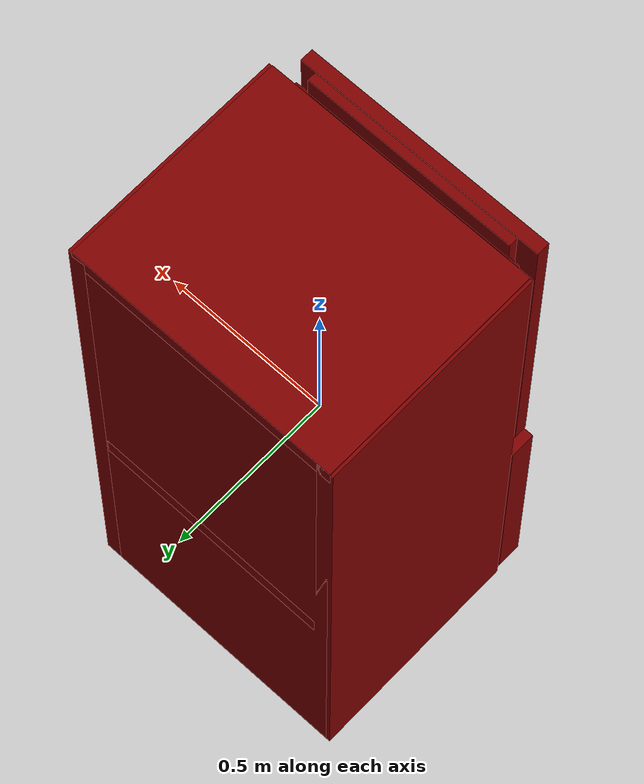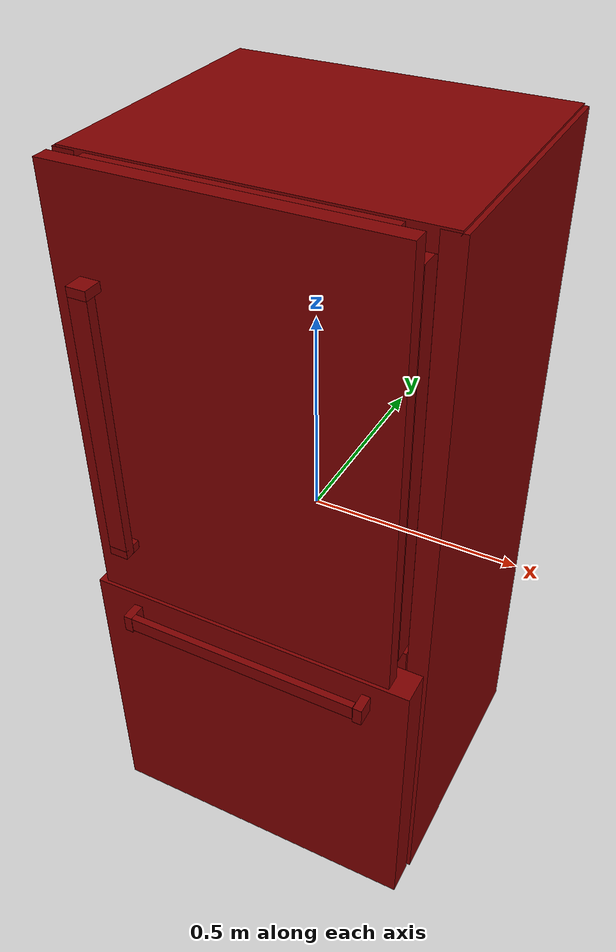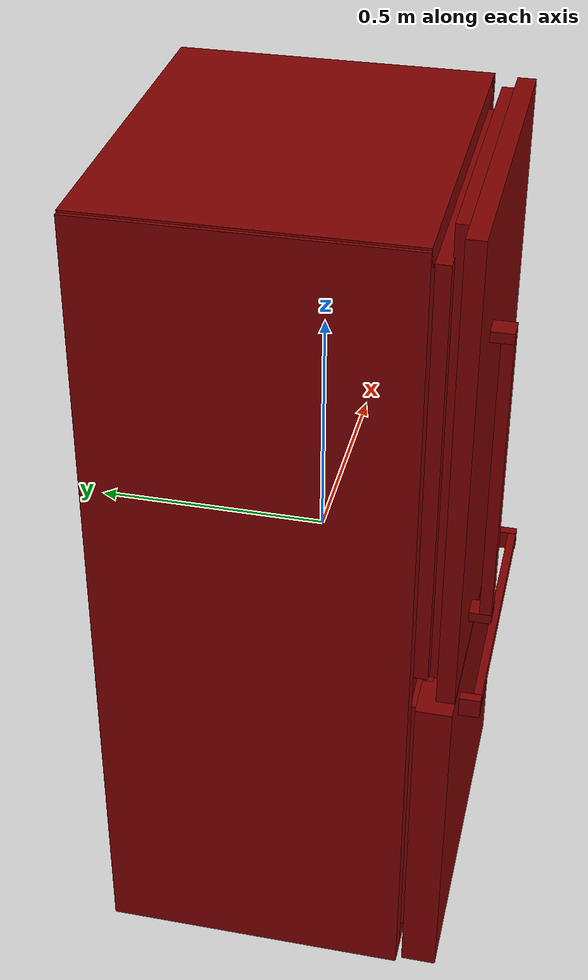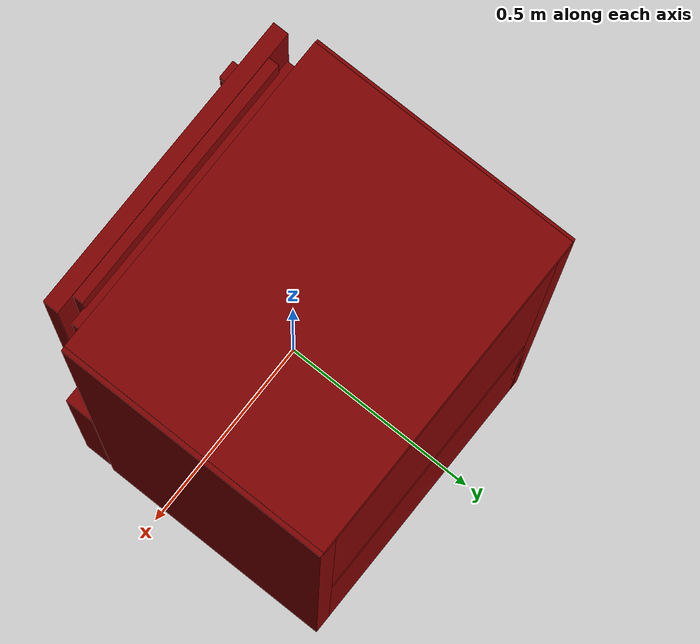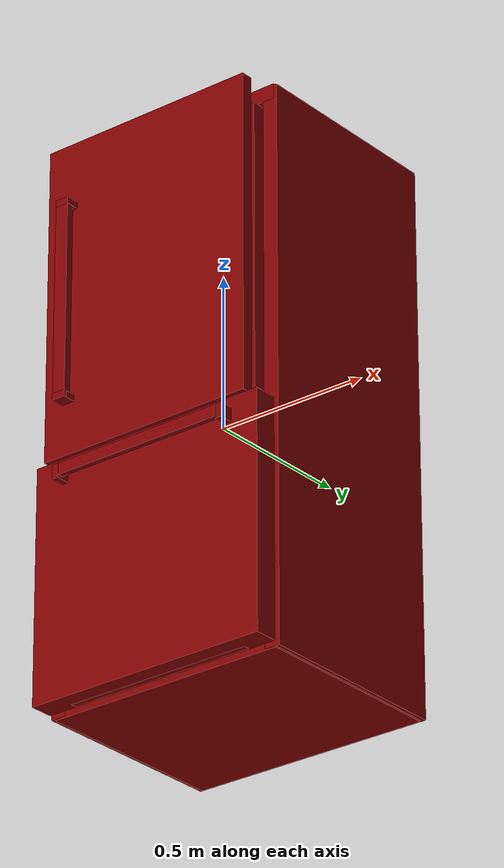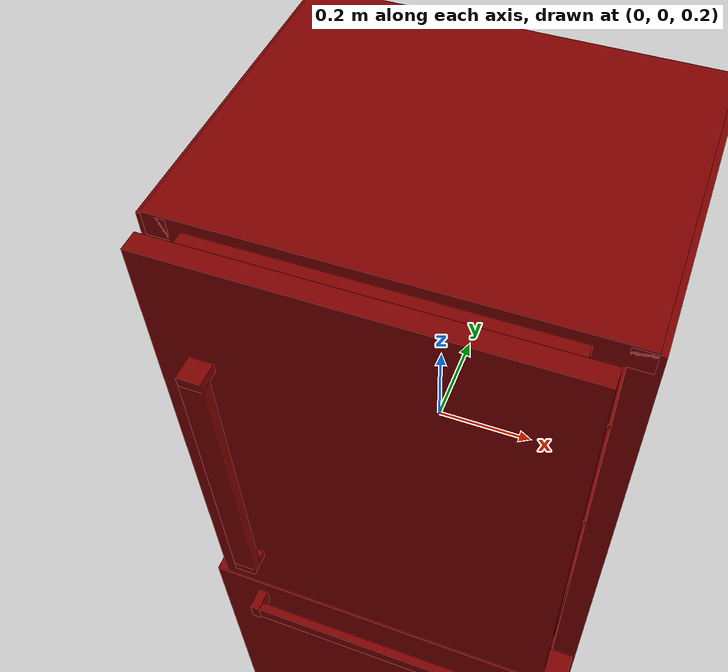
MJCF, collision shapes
<?xml version='1.0' encoding='UTF-8'?>
<mujoco model="model">
  <option timestep="0.002" gravity="0.0 0.0 -9.81"/>
  <compiler angle="radian"/>
  <asset>
    <mesh file="visuals/freezer0.obj" name="freezer0_vis"/>
    <mesh file="visuals/fridge_door.obj" name="fridge_door_vis"/>
    <mesh file="visuals/fridge_door_Clear.obj" name="fridge_door_Clear_vis"/>
    <mesh file="visuals/fridge_drawer0.obj" name="fridge_drawer0_vis"/>
    <mesh file="visuals/Body001.obj" name="Body001_vis"/>
    <mesh file="visuals/Body001_Clear.obj" name="Body001_Clear_vis"/>
    <texture file="visuals/T_BC001.png" name="Body001_material" type="2d"/>
    <material name="Body001_material" rgba="1 1 1 1.0" texture="Body001_material" shininess="0.1" specular="5"/>
    <texture file="visuals/T_BC001.png" name="freezer0_material" type="2d"/>
    <material name="freezer0_material" rgba="1 1 1 1.0" texture="freezer0_material" shininess="0.1" specular="5"/>
    <texture file="visuals/T_BC001.png" name="fridge_door_material" type="2d"/>
    <material name="fridge_door_material" rgba="1 1 1 1.0" texture="fridge_door_material" shininess="0.1" specular="5"/>
    <material name="fridge_door_Clear_material" rgba="0.6450700759887695 0.6450700759887695 0.6450700759887695 0.699999988079071" shininess="0.5" specular="0.3103448502657381"/>
    <texture file="visuals/T_BC001.png" name="fridge_drawer0_material" type="2d"/>
    <material name="fridge_drawer0_material" rgba="1 1 1 1.0" texture="fridge_drawer0_material" shininess="0.1" specular="3"/>
    <material name="Body001_Clear_material" rgba="0.6450700759887695 0.6450700759887695 0.6450700759887695 0.699999988079071" shininess="0.5" specular="0.3103448502657381"/>
  </asset>
  <default>
    <default class="visual">
      <geom conaffinity="0" contype="0" group="1" type="mesh"/>
    </default>
    <default class="collision">
      <geom group="0" rgba="0.5 0 0 0.5"/>
    </default>
    <default class="spawn">
      <geom group="0" rgba="1 1 1 0.5" contype="0" conaffinity="0"/>
      <site group="0" rgba="1 1 1 0.5"/>
    </default>
    <default class="region">
      <geom group="1" conaffinity="0" contype="0" rgba="0 1 0 0"/>
    </default>
  </default>
  <worldbody>
    <body>
      <body name="object">
        <geom mesh="Body001_vis" type="mesh" solimp="0.998 0.998 0.001" solref="0.001 1" friction="0.95 0.3 0.1" class="visual" material="Body001_material"/>
        <geom class="collision" type="box" pos="-0.00000010 0.06226730 -0.87054509" size="0.3977836072444916 0.3265019655227661 0.030567556619644165" quat="1.0 0.0 0.0 0.0"/>
        <geom class="collision" type="box" pos="-0.00000010 0.37655068 -0.00563122" size="0.3978986442089081 0.02225613035261631 0.8913357257843018" quat="1.0 0.0 0.0 0.0"/>
        <geom class="collision" type="box" pos="0.38503176 0.06721333 -0.00563122" size="0.025028934702277184 0.33159351348876953 0.8913357257843018" quat="1.0 0.0 0.0 0.0"/>
        <geom class="collision" type="box" pos="-0.38610706 0.06721334 -0.00563122" size="0.025013392791152 0.33159351348876953 0.8913357257843018" quat="1.0 0.0 0.0 0.0"/>
        <geom class="collision" type="box" pos="-0.00170761 0.06721334 0.86624122" size="0.40111514925956726 0.3315935432910919 0.02416747249662876" quat="1.0 0.0 0.0 0.0"/>
        <geom class="collision" type="box" pos="-0.00076633 0.10481304 0.53163707" size="0.3590417206287384 0.2529040575027466 0.006610413547605276" quat="1.0 0.0 0.0 0.0"/>
        <geom class="collision" type="box" pos="-0.00076633 0.10212279 0.20541735" size="0.35904252529144287 0.25602906942367554 0.006610425654798746" quat="1.0 0.0 0.0 0.0"/>
        <geom class="collision" type="box" pos="-0.00002157 0.06883793 -0.13832755" size="0.3557049334049225 0.3299690783023834 0.029622908681631088" quat="1.0 0.0 0.0 0.0"/>
        <geom class="collision" type="box" pos="0.35061234 0.12823511 0.18080047" size="0.004796578083187342 0.19992709159851074 0.016412153840065002" quat="1.0 0.0 0.0 0.0"/>
        <geom class="collision" type="box" pos="0.35061234 0.12823511 0.50645566" size="0.0047965575940907 0.19992709159851074 0.016412153840065002" quat="1.0 0.0 0.0 0.0"/>
        <geom class="collision" type="box" pos="-0.35384405 0.12823511 0.50645566" size="0.0044158645905554295 0.19992709159851074 0.016412153840065002" quat="1.0 0.0 0.0 0.0"/>
        <geom class="collision" type="box" pos="-0.35330912 0.12823511 0.17864893" size="0.0049507757648825645 0.19992709159851074 0.016412153840065002" quat="1.0 0.0 0.0 0.0"/>
        <body name="freezer0">
          <geom class="region" name="reg_freezer0" type="box" pos="-0.0033376499999999976 -0.0027683299999999994 -0.5183605250000001" size="0.26670320000000003 0.23685787000000003 0.200375005"/>
          <joint axis="0.0 -1.0 0.0" pos="0.00033486 -0.06141864 -0.50902092" limited="true" name="freezer0_door_joint" range="0.0 0.5" type="slide" damping="1" frictionloss="1" armature=".01" stiffness="0.05"/>
          <geom mesh="freezer0_vis" type="mesh" solimp="0.998 0.998 0.001" solref="0.001 1" friction="0.95 0.3 0.1" class="visual" material="freezer0_material"/>
          <geom class="collision" type="box" pos="-0.29664779 -0.37693404 -0.19838613" size="0.010743711143732071 0.022466136142611504 0.022289980202913284" quat="1.0 0.0 0.0 0.0" name="freezer0_door_handle_1"/>
          <geom class="collision" type="box" pos="0.30421209 -0.37693404 -0.19838625" size="0.010743711143732071 0.022466136142611504 0.022289980202913284" quat="1.0 0.0 0.0 0.0" name="freezer0_door_handle_2"/>
          <geom class="collision" type="box" pos="0.00339945 -0.39041822 -0.19450402" size="0.2889271676540375 0.008723885752260685 0.018406620249152184" quat="1.0 0.0 0.0 0.0" name="freezer0_door_handle_main"/>
          <geom class="collision" type="box" pos="-0.00057559 -0.31501611 -0.51392329" size="0.4054991602897644 0.03805540129542351 0.3741016387939453" quat="1.0 0.0 0.0 0.0" name="freezer0_door_main"/>
          <geom class="collision" type="box" pos="0.00402964 -0.28899830 -0.51392329" size="0.31278368830680847 0.009650426916778088 0.37410208582878113" quat="1.0 0.0 0.0 0.0"/>
          <geom class="collision" type="box" pos="-0.00487806 0.00703855 -0.74308032" size="0.3122229278087616 0.2693924307823181 0.018875669687986374" quat="1.0 0.0 0.0 0.0"/>
          <geom class="collision" type="box" pos="0.28860590 0.00703855 -0.51638526" size="0.01873895712196827 0.2693924307823181 0.20780302584171295" quat="1.0 0.0 0.0 0.0"/>
          <geom class="collision" type="box" pos="-0.29645371 0.00703855 -0.51633507" size="0.019839731976389885 0.2693924307823181 0.20775285363197327" quat="1.0 0.0 0.0 0.0"/>
          <geom class="collision" type="box" pos="-0.00467552 0.25812814 -0.51633507" size="0.2765098810195923 0.01830284297466278 0.20775285363197327" quat="1.0 0.0 0.0 0.0"/>
          <geom class="collision" type="box" pos="0.00032192 -0.26399141 -0.50795209" size="0.35030752420425415 0.012249666266143322 0.328917920589447" quat="1.0 0.0 0.0 0.0"/>
        </body>
        <body name="fridge_door">
          <joint axis="0.0 0.0 1.0" pos="0.36623138 -0.31620973 0.44672972" limited="true" name="fridge_door_joint" range="0.0 1.5707963267948966" type="hinge" damping="1" frictionloss="1" armature=".01" stiffness="0.05"/>
          <geom mesh="fridge_door_vis" type="mesh" solimp="0.998 0.998 0.001" solref="0.001 1" friction="0.95 0.3 0.1" class="visual" material="fridge_door_material"/>
          <geom class="collision" type="box" pos="-0.01138821 -0.33405276 0.38632214" size="0.3680526614189148 0.01901877298951149 0.5154201984405518" quat="1.0 0.0 0.0 0.0" name="fridge_door_main"/>
          <geom class="collision" type="box" pos="-0.28425997 -0.39387458 0.35853699" size="0.02228936366736889 0.012253968976438046 0.3276068866252899" quat="1.0 0.0 0.0 0.0" name="fridge_door_handle_main"/>
          <geom class="collision" type="box" pos="-0.28426063 -0.38392048 0.04118982" size="0.022289982065558434 0.022466136142611504 0.010743709281086922" quat="1.0 0.0 0.0 0.0" name="fridge_door_handle_2"/>
          <geom class="collision" type="box" pos="-0.28426045 -0.38392048 0.67963934" size="0.022289982065558434 0.022466136142611504 0.010743709281086922" quat="1.0 0.0 0.0 0.0" name="fridge_door_handle_1"/>
          <geom class="collision" type="box" pos="0.01145817 -0.21528206 0.68677312" size="0.2946494519710541 0.029849542304873466 0.004677204415202141" quat="1.0 0.0 0.0 0.0"/>
          <geom class="collision" type="box" pos="0.00404008 -0.16789669 0.72590888" size="0.30405333638191223 0.006379380356520414 0.04044532775878906" quat="1.0 0.0 0.0 0.0"/>
          <geom class="collision" type="box" pos="0.00404007 -0.25276988 0.72886366" size="0.3040008544921875 0.0053335330449044704 0.041201893240213394" quat="1.0 0.0 0.0 0.0"/>
          <geom class="collision" type="box" pos="-0.29951131 -0.21528204 0.72988063" size="0.0063467444851994514 0.04173363372683525 0.038186654448509216" quat="1.0 0.0 0.0 0.0"/>
          <geom class="collision" type="box" pos="0.30275834 -0.21528204 0.72988063" size="0.006346755661070347 0.04173371195793152 0.03818652406334877" quat="1.0 0.0 0.0 0.0"/>
          <geom class="collision" type="box" pos="0.30275834 -0.21528204 0.58159924" size="0.006346768233925104 0.04173378273844719 0.024467360228300095" quat="1.0 0.0 0.0 0.0"/>
          <geom class="collision" type="box" pos="-0.29951137 -0.21528204 0.58159924" size="0.006346782203763723 0.04173386096954346 0.02446729503571987" quat="1.0 0.0 0.0 0.0"/>
          <geom class="collision" type="box" pos="0.00404003 -0.25276988 0.58058238" size="0.3040028512477875 0.005333579145371914 0.027482343837618828" quat="1.0 0.0 0.0 0.0"/>
          <geom class="collision" type="box" pos="0.00404004 -0.16809849 0.57762748" size="0.3040449023246765 0.006177580915391445 0.02672436833381653" quat="1.0 0.0 0.0 0.0"/>
          <geom class="collision" type="box" pos="0.01145816 -0.21528204 0.55220830" size="0.2946481704711914 0.04173408821225166 0.004676942713558674" quat="1.0 0.0 0.0 0.0"/>
          <geom class="collision" type="box" pos="0.01145812 -0.21528204 0.38782135" size="0.29464855790138245 0.04173416644334793 0.004676926881074905" quat="1.0 0.0 0.0 0.0"/>
          <geom class="collision" type="box" pos="0.00404000 -0.16722868 0.43042791" size="0.3040412962436676 0.0070473914965987206 0.043914034962654114" quat="1.0 0.0 0.0 0.0"/>
          <geom class="collision" type="box" pos="0.00403999 -0.25276988 0.43338269" size="0.30400487780570984 0.005333625245839357 0.04467136412858963" quat="1.0 0.0 0.0 0.0"/>
          <geom class="collision" type="box" pos="-0.29951143 -0.21528204 0.43439960" size="0.006346870679408312 0.041734375059604645 0.041656117886304855" quat="1.0 0.0 0.0 0.0"/>
          <geom class="collision" type="box" pos="0.30275828 -0.21528204 0.43439960" size="0.006346881855279207 0.04173445329070091 0.04165598750114441" quat="1.0 0.0 0.0 0.0"/>
          <geom class="collision" type="box" pos="0.30275816 -0.21528204 0.14418004" size="0.0063468944281339645 0.04173452407121658 0.04165585711598396" quat="1.0 0.0 0.0 0.0"/>
          <geom class="collision" type="box" pos="-0.29951149 -0.21528204 0.14418003" size="0.006346908397972584 0.04173460230231285 0.04165572673082352" quat="1.0 0.0 0.0 0.0"/>
          <geom class="collision" type="box" pos="0.00403991 -0.25276988 0.14316314" size="0.3040069043636322 0.005333671811968088 0.0446707159280777" quat="1.0 0.0 0.0 0.0"/>
          <geom class="collision" type="box" pos="0.00403991 -0.17024403 0.14020833" size="0.3040328621864319 0.0040320442058146 0.043912600725889206" quat="1.0 0.0 0.0 0.0"/>
          <geom class="collision" type="box" pos="0.01145803 -0.21528204 0.09760179" size="0.29465219378471375 0.04173482581973076 0.004676781129091978" quat="1.0 0.0 0.0 0.0"/>
          <geom class="collision" type="box" pos="-0.00324339 -0.31100076 0.38868397" size="0.31383344531059265 0.021568071097135544 0.5091606378555298" quat="1.0 0.0 0.0 0.0"/>
          <geom class="collision" type="box" pos="0.00071578 -0.26449730 0.36540526" size="0.34871506690979004 0.027882946655154228 0.4683062732219696" quat="1.0 0.0 0.0 0.0"/>
          <body name="fridge_door_Clear">
            <geom mesh="fridge_door_Clear_vis" type="mesh" solimp="0.998 0.998 0.001" solref="0.001 1" friction="0.95 0.3 0.1" class="visual" material="fridge_door_Clear_material"/>
            <geom class="collision" type="box" pos="0.01145817 -0.21528206 0.68677312" size="0.2946494519710541 0.029849542304873466 0.004677204415202141" quat="1.0 0.0 0.0 0.0"/>
            <geom class="collision" type="box" pos="0.00404008 -0.16789669 0.72590888" size="0.30405333638191223 0.006379380356520414 0.04044532775878906" quat="1.0 0.0 0.0 0.0"/>
            <geom class="collision" type="box" pos="0.00404007 -0.25276988 0.72886366" size="0.3040008544921875 0.0053335330449044704 0.041201893240213394" quat="1.0 0.0 0.0 0.0"/>
            <geom class="collision" type="box" pos="-0.29951131 -0.21528204 0.72988063" size="0.0063467444851994514 0.04173363372683525 0.038186654448509216" quat="1.0 0.0 0.0 0.0"/>
            <geom class="collision" type="box" pos="0.30275834 -0.21528204 0.72988063" size="0.006346755661070347 0.04173371195793152 0.03818652406334877" quat="1.0 0.0 0.0 0.0"/>
            <geom class="collision" type="box" pos="0.30275834 -0.21528204 0.58159924" size="0.006346768233925104 0.04173378273844719 0.024467360228300095" quat="1.0 0.0 0.0 0.0"/>
            <geom class="collision" type="box" pos="-0.29951137 -0.21528204 0.58159924" size="0.006346782203763723 0.04173386096954346 0.02446729503571987" quat="1.0 0.0 0.0 0.0"/>
            <geom class="collision" type="box" pos="0.00404003 -0.25276988 0.58058238" size="0.3040028512477875 0.005333579145371914 0.027482343837618828" quat="1.0 0.0 0.0 0.0"/>
            <geom class="collision" type="box" pos="0.00404004 -0.16809849 0.57762748" size="0.3040449023246765 0.006177580915391445 0.02672436833381653" quat="1.0 0.0 0.0 0.0"/>
            <geom class="collision" type="box" pos="0.01145816 -0.21528204 0.55220830" size="0.2946481704711914 0.04173408821225166 0.004676942713558674" quat="1.0 0.0 0.0 0.0"/>
            <geom class="collision" type="box" pos="0.01145812 -0.21528204 0.38782135" size="0.29464855790138245 0.04173416644334793 0.004676926881074905" quat="1.0 0.0 0.0 0.0"/>
            <geom class="collision" type="box" pos="0.00404000 -0.16722868 0.43042791" size="0.3040412962436676 0.0070473914965987206 0.043914034962654114" quat="1.0 0.0 0.0 0.0"/>
            <geom class="collision" type="box" pos="0.00403999 -0.25276988 0.43338269" size="0.30400487780570984 0.005333625245839357 0.04467136412858963" quat="1.0 0.0 0.0 0.0"/>
            <geom class="collision" type="box" pos="-0.29951143 -0.21528204 0.43439960" size="0.006346870679408312 0.041734375059604645 0.041656117886304855" quat="1.0 0.0 0.0 0.0"/>
            <geom class="collision" type="box" pos="0.30275828 -0.21528204 0.43439960" size="0.006346881855279207 0.04173445329070091 0.04165598750114441" quat="1.0 0.0 0.0 0.0"/>
            <geom class="collision" type="box" pos="0.30275816 -0.21528204 0.14418004" size="0.0063468944281339645 0.04173452407121658 0.04165585711598396" quat="1.0 0.0 0.0 0.0"/>
            <geom class="collision" type="box" pos="-0.29951149 -0.21528204 0.14418003" size="0.006346908397972584 0.04173460230231285 0.04165572673082352" quat="1.0 0.0 0.0 0.0"/>
            <geom class="collision" type="box" pos="0.00403991 -0.25276988 0.14316314" size="0.3040069043636322 0.005333671811968088 0.0446707159280777" quat="1.0 0.0 0.0 0.0"/>
            <geom class="collision" type="box" pos="0.00403991 -0.17024403 0.14020833" size="0.3040328621864319 0.0040320442058146 0.043912600725889206" quat="1.0 0.0 0.0 0.0"/>
            <geom class="collision" type="box" pos="0.01145803 -0.21528204 0.09760179" size="0.29465219378471375 0.04173482581973076 0.004676781129091978" quat="1.0 0.0 0.0 0.0"/>
          </body>
        </body>
        <body name="fridge_drawer0">
          <geom class="region" name="reg_fridge_drawer0" type="box" pos="-0.04453169000000001 0.09157899 0.00245803" size="0.25507402 0.2011457 0.0637544"/>
          <joint axis="0.0 -1.0 0.0" pos="-0.04488392 0.09107547 -0.01087648" limited="true" name="fridge_drawer0_joint" range="0.0 0.5" type="slide" damping="1" frictionloss="1" armature=".01" stiffness="0.05"/>
          <geom mesh="fridge_drawer0_vis" type="mesh" solimp="0.998 0.998 0.001" solref="0.001 1" friction="0.95 0.3 0.1" class="visual" material="fridge_drawer0_material"/>
          <geom class="collision" type="box" pos="-0.04911367 0.09023716 -0.08040467" size="0.2948463261127472 0.21845440566539764 0.014278902672231197" quat="1.0 0.0 0.0 0.0"/>
          <geom class="collision" type="box" pos="-0.32748601 0.09364101 -0.01058818" size="0.22013039886951447 0.0831819549202919 0.018035607412457466" quat="0.5145353078842163 -0.48502933979034424 0.4850291907787323 -0.5145353674888611"/>
          <geom class="collision" type="box" pos="0.23783022 0.09364100 -0.01093307" size="0.22013039886951447 0.08299592137336731 0.012971624732017517" quat="0.4723641872406006 -0.5261863470077515 0.5261863470077515 -0.472364217042923"/>
          <geom class="collision" type="box" pos="-0.04138430 0.32111735 -0.01038204" size="0.30322352051734924 0.015275704674422741 0.08243141323328018" quat="1.0 0.0 0.0 0.0"/>
          <geom class="collision" type="box" pos="-0.30509102 -0.13092888 -0.01276607" size="0.03656391054391861 0.08267837017774582 0.00840185210108757" quat="1.0655899984612915e-07 -6.711309730178527e-09 0.7501555681228638 -0.6612613797187805"/>
          <geom class="collision" type="box" pos="-0.04864023 -0.13092885 -0.01276603" size="0.08899256587028503 0.08267835527658463 0.008401861414313316" quat="1.0655899984612915e-07 -6.711309730178527e-09 0.7501555681228638 -0.6612613797187805"/>
          <geom class="collision" type="box" pos="0.21372859 -0.13092879 -0.01276599" size="0.04170628637075424 0.08267837017774582 0.00840185210108757" quat="1.0655899984612915e-07 -6.711309730178527e-09 0.7501555681228638 -0.6612613797187805"/>
          <geom class="collision" type="box" pos="0.10555298 -0.12886555 -0.02908066" size="0.06770288199186325 0.06623376160860062 0.00840185210108757" quat="1.0655899984612915e-07 -6.711309730178527e-09 0.7501555681228638 -0.6612613797187805"/>
          <geom class="collision" type="box" pos="-0.20273542 -0.12886559 -0.02908071" size="0.06770288199186325 0.06623376160860062 0.00840185210108757" quat="1.0655899984612915e-07 -6.711309730178527e-09 0.7501555681228638 -0.6612613797187805"/>
        </body>
        <body name="Body001_Clear">
          <geom mesh="Body001_Clear_vis" type="mesh" solimp="0.998 0.998 0.001" solref="0.001 1" friction="0.95 0.3 0.1" class="visual" material="Body001_Clear_material"/>
          <geom class="collision" type="box" pos="-0.00076633 0.10481304 0.53163707" size="0.3590417206287384 0.2529040575027466 0.006610413547605276" quat="1.0 0.0 0.0 0.0"/>
          <geom class="collision" type="box" pos="-0.00076633 0.10212279 0.20541735" size="0.35904252529144287 0.25602906942367554 0.006610425654798746" quat="1.0 0.0 0.0 0.0"/>
        </body>
        <geom class="region" name="reg_fridge_shelf0" type="box" pos="-0.0015748750000000034 0.101468915 0.368839555" size="0.34362025500000004 0.24720060500000002 0.151714345"/>
        <geom class="region" name="reg_fridge_shelf1" type="box" pos="4.233500000000445e-05 0.101468915 0.68996051" size="0.355789865 0.24720060500000002 0.14755021000000001"/>
        <geom class="region" name="reg_main" type="box" pos="-0.0005298599999999931 0.022867760000000015 0.0003144099999999872" size="0.41158877 0.37693913 0.90242709"/>
      </body>
    </body>
  </worldbody>
  <actuator>
    <motor name="freezer0_door_joint_actuator" joint="freezer0_door_joint" gear="50"/>
    <motor name="fridge_door_joint_actuator" joint="fridge_door_joint" gear="50"/>
    <motor name="fridge_drawer0_joint_actuator" joint="fridge_drawer0_joint" gear="50"/>
  </actuator>
</mujoco>
